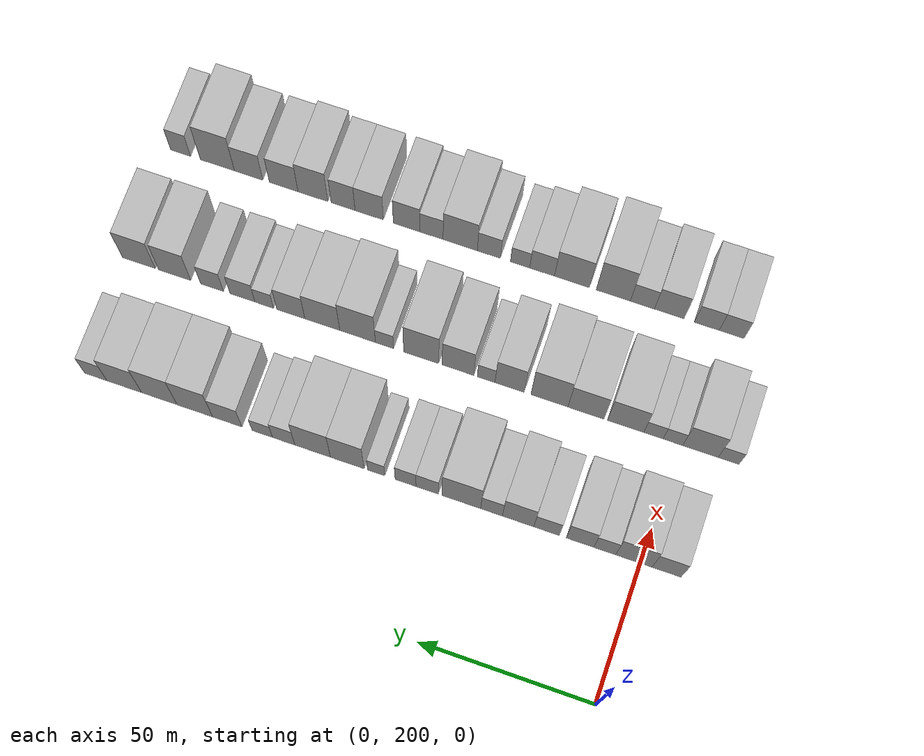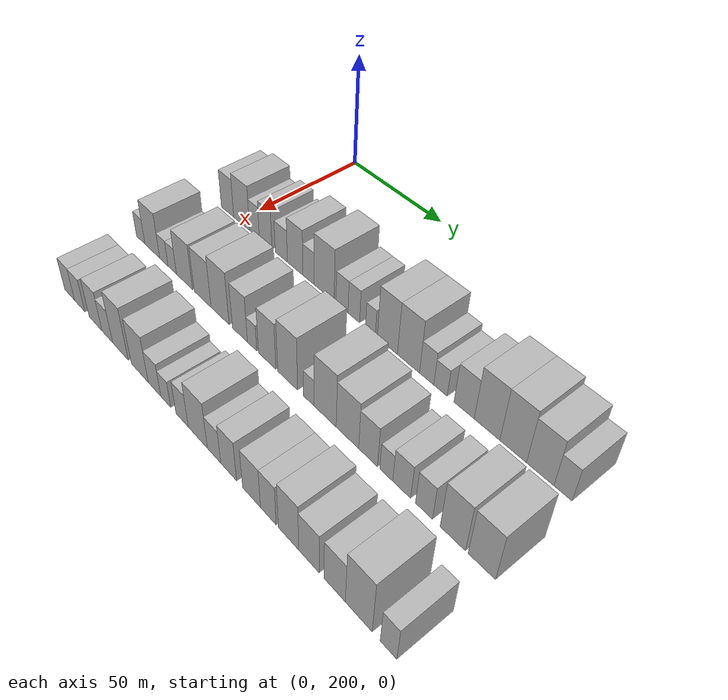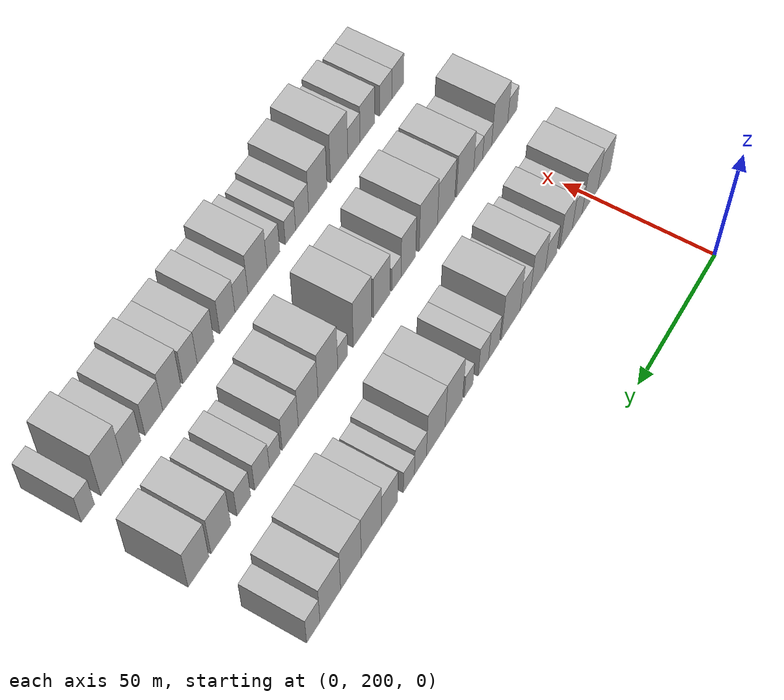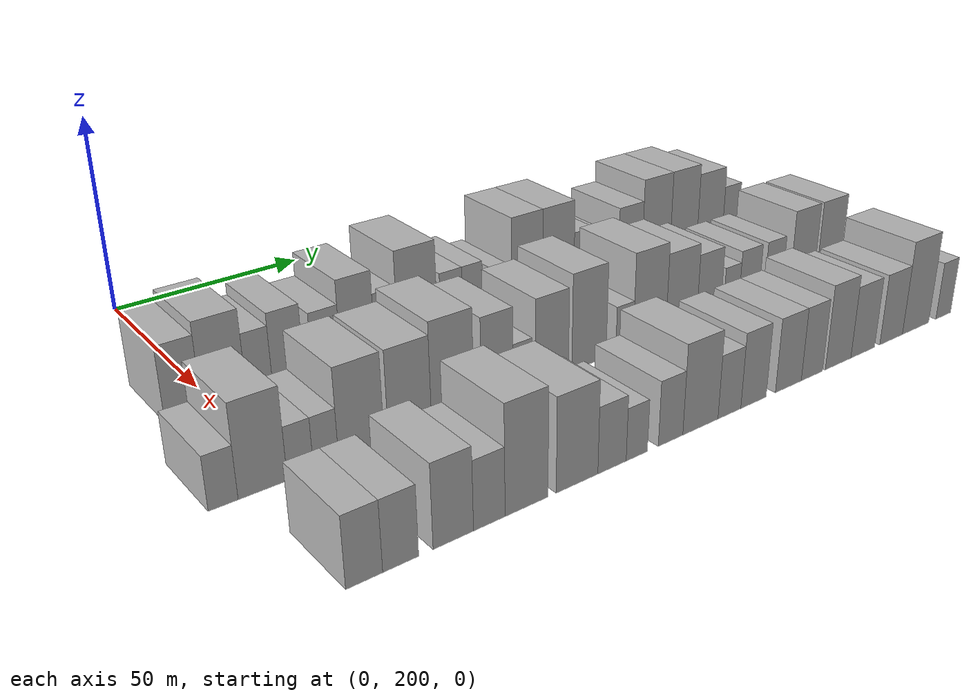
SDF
<sdf version="1.6">
 <world name="default">
  <model name="building_57">
   <static>1</static>
   <pose>50.0000 192.7352 0 0.000000 0.000000 0.000000</pose>
   <link name="link">
    <pose>0 0 9.00 0 0 0</pose>
    <collision name="collision"><geometry><box><size>20.0000 8.2420 18.0000</size></box></geometry></collision>
    <visual name="visual">
     <cast_shadows>0</cast_shadows>
     <geometry><box><size>20.0000 8.2420 18.0000</size></box></geometry>
     <material>
      <script>
       <uri>model://HANNAS_wall/materials/scripts</uri>
       <uri>model://HANNAS_wall/materials/textures</uri>
       <name>vrc/HANNAS_wall</name>
      </script>
     </material>
    </visual>
   </link>
  </model>
  <model name="building_58">
   <static>1</static>
   <pose>50.0000 202.0015 0 0.000000 0.000000 0.000000</pose>
   <link name="link">
    <pose>0 0 10.50 0 0 0</pose>
    <collision name="collision"><geometry><box><size>20.0000 10.2906 21.0000</size></box></geometry></collision>
    <visual name="visual">
     <cast_shadows>0</cast_shadows>
     <geometry><box><size>20.0000 10.2906 21.0000</size></box></geometry>
     <material>
      <script>
       <uri>model://HANNAS_wall/materials/scripts</uri>
       <uri>model://HANNAS_wall/materials/textures</uri>
       <name>vrc/HANNAS_wall</name>
      </script>
     </material>
    </visual>
   </link>
  </model>
  <model name="building_59">
   <static>1</static>
   <pose>50.0000 210.2636 0 0.000000 0.000000 0.000000</pose>
   <link name="link">
    <pose>0 0 7.50 0 0 0</pose>
    <collision name="collision"><geometry><box><size>20.0000 6.2336 15.0000</size></box></geometry></collision>
    <visual name="visual">
     <cast_shadows>0</cast_shadows>
     <geometry><box><size>20.0000 6.2336 15.0000</size></box></geometry>
     <material>
      <script>
       <uri>model://HANNAS_wall/materials/scripts</uri>
       <uri>model://HANNAS_wall/materials/textures</uri>
       <name>vrc/HANNAS_wall</name>
      </script>
     </material>
    </visual>
   </link>
  </model>
  <model name="building_60">
   <static>1</static>
   <pose>50.0000 217.2864 0 0.000000 0.000000 0.000000</pose>
   <link name="link">
    <pose>0 0 9.00 0 0 0</pose>
    <collision name="collision"><geometry><box><size>20.0000 7.8121 18.0000</size></box></geometry></collision>
    <visual name="visual">
     <cast_shadows>0</cast_shadows>
     <geometry><box><size>20.0000 7.8121 18.0000</size></box></geometry>
     <material>
      <script>
       <uri>model://HANNAS_wall/materials/scripts</uri>
       <uri>model://HANNAS_wall/materials/textures</uri>
       <name>vrc/HANNAS_wall</name>
      </script>
     </material>
    </visual>
   </link>
  </model>
  <model name="building_61">
   <static>1</static>
   <pose>50.0000 226.8428 0 0.000000 0.000000 0.000000</pose>
   <link name="link">
    <pose>0 0 7.50 0 0 0</pose>
    <collision name="collision"><geometry><box><size>20.0000 7.3006 15.0000</size></box></geometry></collision>
    <visual name="visual">
     <cast_shadows>0</cast_shadows>
     <geometry><box><size>20.0000 7.3006 15.0000</size></box></geometry>
     <material>
      <script>
       <uri>model://HANNAS_wall/materials/scripts</uri>
       <uri>model://HANNAS_wall/materials/textures</uri>
       <name>vrc/HANNAS_wall</name>
      </script>
     </material>
    </visual>
   </link>
  </model>
  <model name="building_62">
   <static>1</static>
   <pose>50.0000 235.0057 0 0.000000 0.000000 0.000000</pose>
   <link name="link">
    <pose>0 0 10.50 0 0 0</pose>
    <collision name="collision"><geometry><box><size>20.0000 9.0253 21.0000</size></box></geometry></collision>
    <visual name="visual">
     <cast_shadows>0</cast_shadows>
     <geometry><box><size>20.0000 9.0253 21.0000</size></box></geometry>
     <material>
      <script>
       <uri>model://HANNAS_wall/materials/scripts</uri>
       <uri>model://HANNAS_wall/materials/textures</uri>
       <name>vrc/HANNAS_wall</name>
      </script>
     </material>
    </visual>
   </link>
  </model>
  <model name="building_63">
   <static>1</static>
   <pose>50.0000 242.6533 0 0.000000 0.000000 0.000000</pose>
   <link name="link">
    <pose>0 0 7.50 0 0 0</pose>
    <collision name="collision"><geometry><box><size>20.0000 6.2699 15.0000</size></box></geometry></collision>
    <visual name="visual">
     <cast_shadows>0</cast_shadows>
     <geometry><box><size>20.0000 6.2699 15.0000</size></box></geometry>
     <material>
      <script>
       <uri>model://HANNAS_wall/materials/scripts</uri>
       <uri>model://HANNAS_wall/materials/textures</uri>
       <name>vrc/HANNAS_wall</name>
      </script>
     </material>
    </visual>
   </link>
  </model>
  <model name="building_64">
   <static>1</static>
   <pose>50.0000 251.3895 0 0.000000 0.000000 0.000000</pose>
   <link name="link">
    <pose>0 0 12.00 0 0 0</pose>
    <collision name="collision"><geometry><box><size>20.0000 11.2024 24.0000</size></box></geometry></collision>
    <visual name="visual">
     <cast_shadows>0</cast_shadows>
     <geometry><box><size>20.0000 11.2024 24.0000</size></box></geometry>
     <material>
      <script>
       <uri>model://HANNAS_wall/materials/scripts</uri>
       <uri>model://HANNAS_wall/materials/textures</uri>
       <name>vrc/HANNAS_wall</name>
      </script>
     </material>
    </visual>
   </link>
  </model>
  <model name="building_65">
   <static>1</static>
   <pose>50.0000 261.2134 0 0.000000 0.000000 0.000000</pose>
   <link name="link">
    <pose>0 0 7.50 0 0 0</pose>
    <collision name="collision"><geometry><box><size>20.0000 6.4454 15.0000</size></box></geometry></collision>
    <visual name="visual">
     <cast_shadows>0</cast_shadows>
     <geometry><box><size>20.0000 6.4454 15.0000</size></box></geometry>
     <material>
      <script>
       <uri>model://HANNAS_wall/materials/scripts</uri>
       <uri>model://HANNAS_wall/materials/textures</uri>
       <name>vrc/HANNAS_wall</name>
      </script>
     </material>
    </visual>
   </link>
  </model>
  <model name="building_66">
   <static>1</static>
   <pose>50.0000 267.4584 0 0.000000 0.000000 0.000000</pose>
   <link name="link">
    <pose>0 0 7.50 0 0 0</pose>
    <collision name="collision"><geometry><box><size>20.0000 6.0447 15.0000</size></box></geometry></collision>
    <visual name="visual">
     <cast_shadows>0</cast_shadows>
     <geometry><box><size>20.0000 6.0447 15.0000</size></box></geometry>
     <material>
      <script>
       <uri>model://HANNAS_wall/materials/scripts</uri>
       <uri>model://HANNAS_wall/materials/textures</uri>
       <name>vrc/HANNAS_wall</name>
      </script>
     </material>
    </visual>
   </link>
  </model>
  <model name="building_67">
   <static>1</static>
   <pose>50.0000 275.9786 0 0.000000 0.000000 0.000000</pose>
   <link name="link">
    <pose>0 0 6.00 0 0 0</pose>
    <collision name="collision"><geometry><box><size>20.0000 4.9956 12.0000</size></box></geometry></collision>
    <visual name="visual">
     <cast_shadows>0</cast_shadows>
     <geometry><box><size>20.0000 4.9956 12.0000</size></box></geometry>
     <material>
      <script>
       <uri>model://HANNAS_wall/materials/scripts</uri>
       <uri>model://HANNAS_wall/materials/textures</uri>
       <name>vrc/HANNAS_wall</name>
      </script>
     </material>
    </visual>
   </link>
  </model>
  <model name="building_68">
   <static>1</static>
   <pose>50.0000 284.3986 0 0.000000 0.000000 0.000000</pose>
   <link name="link">
    <pose>0 0 12.00 0 0 0</pose>
    <collision name="collision"><geometry><box><size>20.0000 9.8446 24.0000</size></box></geometry></collision>
    <visual name="visual">
     <cast_shadows>0</cast_shadows>
     <geometry><box><size>20.0000 9.8446 24.0000</size></box></geometry>
     <material>
      <script>
       <uri>model://HANNAS_wall/materials/scripts</uri>
       <uri>model://HANNAS_wall/materials/textures</uri>
       <name>vrc/HANNAS_wall</name>
      </script>
     </material>
    </visual>
   </link>
  </model>
  <model name="building_69">
   <static>1</static>
   <pose>50.0000 294.5354 0 0.000000 0.000000 0.000000</pose>
   <link name="link">
    <pose>0 0 12.00 0 0 0</pose>
    <collision name="collision"><geometry><box><size>20.0000 10.4290 24.0000</size></box></geometry></collision>
    <visual name="visual">
     <cast_shadows>0</cast_shadows>
     <geometry><box><size>20.0000 10.4290 24.0000</size></box></geometry>
     <material>
      <script>
       <uri>model://HANNAS_wall/materials/scripts</uri>
       <uri>model://HANNAS_wall/materials/textures</uri>
       <name>vrc/HANNAS_wall</name>
      </script>
     </material>
    </visual>
   </link>
  </model>
  <model name="building_70">
   <static>1</static>
   <pose>50.0000 303.0234 0 0.000000 0.000000 0.000000</pose>
   <link name="link">
    <pose>0 0 7.50 0 0 0</pose>
    <collision name="collision"><geometry><box><size>20.0000 6.5468 15.0000</size></box></geometry></collision>
    <visual name="visual">
     <cast_shadows>0</cast_shadows>
     <geometry><box><size>20.0000 6.5468 15.0000</size></box></geometry>
     <material>
      <script>
       <uri>model://HANNAS_wall/materials/scripts</uri>
       <uri>model://HANNAS_wall/materials/textures</uri>
       <name>vrc/HANNAS_wall</name>
      </script>
     </material>
    </visual>
   </link>
  </model>
  <model name="building_71">
   <static>1</static>
   <pose>50.0000 309.2907 0 0.000000 0.000000 0.000000</pose>
   <link name="link">
    <pose>0 0 6.00 0 0 0</pose>
    <collision name="collision"><geometry><box><size>20.0000 5.9878 12.0000</size></box></geometry></collision>
    <visual name="visual">
     <cast_shadows>0</cast_shadows>
     <geometry><box><size>20.0000 5.9878 12.0000</size></box></geometry>
     <material>
      <script>
       <uri>model://HANNAS_wall/materials/scripts</uri>
       <uri>model://HANNAS_wall/materials/textures</uri>
       <name>vrc/HANNAS_wall</name>
      </script>
     </material>
    </visual>
   </link>
  </model>
  <model name="building_72">
   <static>1</static>
   <pose>50.0000 319.6072 0 0.000000 0.000000 0.000000</pose>
   <link name="link">
    <pose>0 0 9.00 0 0 0</pose>
    <collision name="collision"><geometry><box><size>20.0000 8.6452 18.0000</size></box></geometry></collision>
    <visual name="visual">
     <cast_shadows>0</cast_shadows>
     <geometry><box><size>20.0000 8.6452 18.0000</size></box></geometry>
     <material>
      <script>
       <uri>model://HANNAS_wall/materials/scripts</uri>
       <uri>model://HANNAS_wall/materials/textures</uri>
       <name>vrc/HANNAS_wall</name>
      </script>
     </material>
    </visual>
   </link>
  </model>
  <model name="building_73">
   <static>1</static>
   <pose>50.0000 329.2154 0 0.000000 0.000000 0.000000</pose>
   <link name="link">
    <pose>0 0 12.00 0 0 0</pose>
    <collision name="collision"><geometry><box><size>20.0000 10.5711 24.0000</size></box></geometry></collision>
    <visual name="visual">
     <cast_shadows>0</cast_shadows>
     <geometry><box><size>20.0000 10.5711 24.0000</size></box></geometry>
     <material>
      <script>
       <uri>model://HANNAS_wall/materials/scripts</uri>
       <uri>model://HANNAS_wall/materials/textures</uri>
       <name>vrc/HANNAS_wall</name>
      </script>
     </material>
    </visual>
   </link>
  </model>
  <model name="building_74">
   <static>1</static>
   <pose>50.0000 339.7780 0 0.000000 0.000000 0.000000</pose>
   <link name="link">
    <pose>0 0 12.00 0 0 0</pose>
    <collision name="collision"><geometry><box><size>20.0000 10.5543 24.0000</size></box></geometry></collision>
    <visual name="visual">
     <cast_shadows>0</cast_shadows>
     <geometry><box><size>20.0000 10.5543 24.0000</size></box></geometry>
     <material>
      <script>
       <uri>model://HANNAS_wall/materials/scripts</uri>
       <uri>model://HANNAS_wall/materials/textures</uri>
       <name>vrc/HANNAS_wall</name>
      </script>
     </material>
    </visual>
   </link>
  </model>
  <model name="building_75">
   <static>1</static>
   <pose>50.0000 350.2322 0 0.000000 0.000000 0.000000</pose>
   <link name="link">
    <pose>0 0 10.50 0 0 0</pose>
    <collision name="collision"><geometry><box><size>20.0000 10.3541 21.0000</size></box></geometry></collision>
    <visual name="visual">
     <cast_shadows>0</cast_shadows>
     <geometry><box><size>20.0000 10.3541 21.0000</size></box></geometry>
     <material>
      <script>
       <uri>model://HANNAS_wall/materials/scripts</uri>
       <uri>model://HANNAS_wall/materials/textures</uri>
       <name>vrc/HANNAS_wall</name>
      </script>
     </material>
    </visual>
   </link>
  </model>
  <model name="building_76">
   <static>1</static>
   <pose>50.0000 358.7346 0 0.000000 0.000000 0.000000</pose>
   <link name="link">
    <pose>0 0 7.50 0 0 0</pose>
    <collision name="collision"><geometry><box><size>20.0000 6.6507 15.0000</size></box></geometry></collision>
    <visual name="visual">
     <cast_shadows>0</cast_shadows>
     <geometry><box><size>20.0000 6.6507 15.0000</size></box></geometry>
     <material>
      <script>
       <uri>model://HANNAS_wall/materials/scripts</uri>
       <uri>model://HANNAS_wall/materials/textures</uri>
       <name>vrc/HANNAS_wall</name>
      </script>
     </material>
    </visual>
   </link>
  </model>
  <model name="building_135">
   <static>1</static>
   <pose>85.0000 185.7520 0 0.000000 0.000000 0.000000</pose>
   <link name="link">
    <pose>0 0 6.00 0 0 0</pose>
    <collision name="collision"><geometry><box><size>20.0000 5.9815 12.0000</size></box></geometry></collision>
    <visual name="visual">
     <cast_shadows>0</cast_shadows>
     <geometry><box><size>20.0000 5.9815 12.0000</size></box></geometry>
     <material>
      <script>
       <uri>model://HANNAS_wall/materials/scripts</uri>
       <uri>model://HANNAS_wall/materials/textures</uri>
       <name>vrc/HANNAS_wall</name>
      </script>
     </material>
    </visual>
   </link>
  </model>
  <model name="building_136">
   <static>1</static>
   <pose>85.0000 193.8483 0 0.000000 0.000000 0.000000</pose>
   <link name="link">
    <pose>0 0 10.50 0 0 0</pose>
    <collision name="collision"><geometry><box><size>20.0000 10.2111 21.0000</size></box></geometry></collision>
    <visual name="visual">
     <cast_shadows>0</cast_shadows>
     <geometry><box><size>20.0000 10.2111 21.0000</size></box></geometry>
     <material>
      <script>
       <uri>model://HANNAS_wall/materials/scripts</uri>
       <uri>model://HANNAS_wall/materials/textures</uri>
       <name>vrc/HANNAS_wall</name>
      </script>
     </material>
    </visual>
   </link>
  </model>
  <model name="building_137">
   <static>1</static>
   <pose>85.0000 201.7842 0 0.000000 0.000000 0.000000</pose>
   <link name="link">
    <pose>0 0 6.00 0 0 0</pose>
    <collision name="collision"><geometry><box><size>20.0000 5.6608 12.0000</size></box></geometry></collision>
    <visual name="visual">
     <cast_shadows>0</cast_shadows>
     <geometry><box><size>20.0000 5.6608 12.0000</size></box></geometry>
     <material>
      <script>
       <uri>model://HANNAS_wall/materials/scripts</uri>
       <uri>model://HANNAS_wall/materials/textures</uri>
       <name>vrc/HANNAS_wall</name>
      </script>
     </material>
    </visual>
   </link>
  </model>
  <model name="building_138">
   <static>1</static>
   <pose>85.0000 207.3984 0 0.000000 0.000000 0.000000</pose>
   <link name="link">
    <pose>0 0 6.00 0 0 0</pose>
    <collision name="collision"><geometry><box><size>20.0000 5.5677 12.0000</size></box></geometry></collision>
    <visual name="visual">
     <cast_shadows>0</cast_shadows>
     <geometry><box><size>20.0000 5.5677 12.0000</size></box></geometry>
     <material>
      <script>
       <uri>model://HANNAS_wall/materials/scripts</uri>
       <uri>model://HANNAS_wall/materials/textures</uri>
       <name>vrc/HANNAS_wall</name>
      </script>
     </material>
    </visual>
   </link>
  </model>
  <model name="building_139">
   <static>1</static>
   <pose>85.0000 215.4247 0 0.000000 0.000000 0.000000</pose>
   <link name="link">
    <pose>0 0 10.50 0 0 0</pose>
    <collision name="collision"><geometry><box><size>20.0000 10.4849 21.0000</size></box></geometry></collision>
    <visual name="visual">
     <cast_shadows>0</cast_shadows>
     <geometry><box><size>20.0000 10.4849 21.0000</size></box></geometry>
     <material>
      <script>
       <uri>model://HANNAS_wall/materials/scripts</uri>
       <uri>model://HANNAS_wall/materials/textures</uri>
       <name>vrc/HANNAS_wall</name>
      </script>
     </material>
    </visual>
   </link>
  </model>
  <model name="building_140">
   <static>1</static>
   <pose>85.0000 226.9028 0 0.000000 0.000000 0.000000</pose>
   <link name="link">
    <pose>0 0 10.50 0 0 0</pose>
    <collision name="collision"><geometry><box><size>20.0000 10.4713 21.0000</size></box></geometry></collision>
    <visual name="visual">
     <cast_shadows>0</cast_shadows>
     <geometry><box><size>20.0000 10.4713 21.0000</size></box></geometry>
     <material>
      <script>
       <uri>model://HANNAS_wall/materials/scripts</uri>
       <uri>model://HANNAS_wall/materials/textures</uri>
       <name>vrc/HANNAS_wall</name>
      </script>
     </material>
    </visual>
   </link>
  </model>
  <model name="building_141">
   <static>1</static>
   <pose>85.0000 237.5397 0 0.000000 0.000000 0.000000</pose>
   <link name="link">
    <pose>0 0 12.00 0 0 0</pose>
    <collision name="collision"><geometry><box><size>20.0000 10.8025 24.0000</size></box></geometry></collision>
    <visual name="visual">
     <cast_shadows>0</cast_shadows>
     <geometry><box><size>20.0000 10.8025 24.0000</size></box></geometry>
     <material>
      <script>
       <uri>model://HANNAS_wall/materials/scripts</uri>
       <uri>model://HANNAS_wall/materials/textures</uri>
       <name>vrc/HANNAS_wall</name>
      </script>
     </material>
    </visual>
   </link>
  </model>
  <model name="building_142">
   <static>1</static>
   <pose>85.0000 249.1986 0 0.000000 0.000000 0.000000</pose>
   <link name="link">
    <pose>0 0 10.50 0 0 0</pose>
    <collision name="collision"><geometry><box><size>20.0000 8.5154 21.0000</size></box></geometry></collision>
    <visual name="visual">
     <cast_shadows>0</cast_shadows>
     <geometry><box><size>20.0000 8.5154 21.0000</size></box></geometry>
     <material>
      <script>
       <uri>model://HANNAS_wall/materials/scripts</uri>
       <uri>model://HANNAS_wall/materials/textures</uri>
       <name>vrc/HANNAS_wall</name>
      </script>
     </material>
    </visual>
   </link>
  </model>
  <model name="building_143">
   <static>1</static>
   <pose>85.0000 256.0603 0 0.000000 0.000000 0.000000</pose>
   <link name="link">
    <pose>0 0 6.00 0 0 0</pose>
    <collision name="collision"><geometry><box><size>20.0000 5.2080 12.0000</size></box></geometry></collision>
    <visual name="visual">
     <cast_shadows>0</cast_shadows>
     <geometry><box><size>20.0000 5.2080 12.0000</size></box></geometry>
     <material>
      <script>
       <uri>model://HANNAS_wall/materials/scripts</uri>
       <uri>model://HANNAS_wall/materials/textures</uri>
       <name>vrc/HANNAS_wall</name>
      </script>
     </material>
    </visual>
   </link>
  </model>
  <model name="building_144">
   <static>1</static>
   <pose>85.0000 264.3470 0 0.000000 0.000000 0.000000</pose>
   <link name="link">
    <pose>0 0 10.50 0 0 0</pose>
    <collision name="collision"><geometry><box><size>20.0000 9.3654 21.0000</size></box></geometry></collision>
    <visual name="visual">
     <cast_shadows>0</cast_shadows>
     <geometry><box><size>20.0000 9.3654 21.0000</size></box></geometry>
     <material>
      <script>
       <uri>model://HANNAS_wall/materials/scripts</uri>
       <uri>model://HANNAS_wall/materials/textures</uri>
       <name>vrc/HANNAS_wall</name>
      </script>
     </material>
    </visual>
   </link>
  </model>
  <model name="building_145">
   <static>1</static>
   <pose>85.0000 275.1715 0 0.000000 0.000000 0.000000</pose>
   <link name="link">
    <pose>0 0 12.00 0 0 0</pose>
    <collision name="collision"><geometry><box><size>20.0000 10.2836 24.0000</size></box></geometry></collision>
    <visual name="visual">
     <cast_shadows>0</cast_shadows>
     <geometry><box><size>20.0000 10.2836 24.0000</size></box></geometry>
     <material>
      <script>
       <uri>model://HANNAS_wall/materials/scripts</uri>
       <uri>model://HANNAS_wall/materials/textures</uri>
       <name>vrc/HANNAS_wall</name>
      </script>
     </material>
    </visual>
   </link>
  </model>
  <model name="building_146">
   <static>1</static>
   <pose>85.0000 286.0085 0 0.000000 0.000000 0.000000</pose>
   <link name="link">
    <pose>0 0 6.00 0 0 0</pose>
    <collision name="collision"><geometry><box><size>20.0000 5.3905 12.0000</size></box></geometry></collision>
    <visual name="visual">
     <cast_shadows>0</cast_shadows>
     <geometry><box><size>20.0000 5.3905 12.0000</size></box></geometry>
     <material>
      <script>
       <uri>model://HANNAS_wall/materials/scripts</uri>
       <uri>model://HANNAS_wall/materials/textures</uri>
       <name>vrc/HANNAS_wall</name>
      </script>
     </material>
    </visual>
   </link>
  </model>
  <model name="building_147">
   <static>1</static>
   <pose>85.0000 294.0016 0 0.000000 0.000000 0.000000</pose>
   <link name="link">
    <pose>0 0 12.00 0 0 0</pose>
    <collision name="collision"><geometry><box><size>20.0000 10.5956 24.0000</size></box></geometry></collision>
    <visual name="visual">
     <cast_shadows>0</cast_shadows>
     <geometry><box><size>20.0000 10.5956 24.0000</size></box></geometry>
     <material>
      <script>
       <uri>model://HANNAS_wall/materials/scripts</uri>
       <uri>model://HANNAS_wall/materials/textures</uri>
       <name>vrc/HANNAS_wall</name>
      </script>
     </material>
    </visual>
   </link>
  </model>
  <model name="building_148">
   <static>1</static>
   <pose>85.0000 304.5121 0 0.000000 0.000000 0.000000</pose>
   <link name="link">
    <pose>0 0 10.50 0 0 0</pose>
    <collision name="collision"><geometry><box><size>20.0000 10.4254 21.0000</size></box></geometry></collision>
    <visual name="visual">
     <cast_shadows>0</cast_shadows>
     <geometry><box><size>20.0000 10.4254 21.0000</size></box></geometry>
     <material>
      <script>
       <uri>model://HANNAS_wall/materials/scripts</uri>
       <uri>model://HANNAS_wall/materials/textures</uri>
       <name>vrc/HANNAS_wall</name>
      </script>
     </material>
    </visual>
   </link>
  </model>
  <model name="building_149">
   <static>1</static>
   <pose>85.0000 313.9116 0 0.000000 0.000000 0.000000</pose>
   <link name="link">
    <pose>0 0 9.00 0 0 0</pose>
    <collision name="collision"><geometry><box><size>20.0000 8.3736 18.0000</size></box></geometry></collision>
    <visual name="visual">
     <cast_shadows>0</cast_shadows>
     <geometry><box><size>20.0000 8.3736 18.0000</size></box></geometry>
     <material>
      <script>
       <uri>model://HANNAS_wall/materials/scripts</uri>
       <uri>model://HANNAS_wall/materials/textures</uri>
       <name>vrc/HANNAS_wall</name>
      </script>
     </material>
    </visual>
   </link>
  </model>
  <model name="building_150">
   <static>1</static>
   <pose>85.0000 321.8836 0 0.000000 0.000000 0.000000</pose>
   <link name="link">
    <pose>0 0 6.00 0 0 0</pose>
    <collision name="collision"><geometry><box><size>20.0000 5.5704 12.0000</size></box></geometry></collision>
    <visual name="visual">
     <cast_shadows>0</cast_shadows>
     <geometry><box><size>20.0000 5.5704 12.0000</size></box></geometry>
     <material>
      <script>
       <uri>model://HANNAS_wall/materials/scripts</uri>
       <uri>model://HANNAS_wall/materials/textures</uri>
       <name>vrc/HANNAS_wall</name>
      </script>
     </material>
    </visual>
   </link>
  </model>
  <model name="building_151">
   <static>1</static>
   <pose>85.0000 328.4122 0 0.000000 0.000000 0.000000</pose>
   <link name="link">
    <pose>0 0 7.50 0 0 0</pose>
    <collision name="collision"><geometry><box><size>20.0000 7.4868 15.0000</size></box></geometry></collision>
    <visual name="visual">
     <cast_shadows>0</cast_shadows>
     <geometry><box><size>20.0000 7.4868 15.0000</size></box></geometry>
     <material>
      <script>
       <uri>model://HANNAS_wall/materials/scripts</uri>
       <uri>model://HANNAS_wall/materials/textures</uri>
       <name>vrc/HANNAS_wall</name>
      </script>
     </material>
    </visual>
   </link>
  </model>
  <model name="building_152">
   <static>1</static>
   <pose>85.0000 337.5911 0 0.000000 0.000000 0.000000</pose>
   <link name="link">
    <pose>0 0 7.50 0 0 0</pose>
    <collision name="collision"><geometry><box><size>20.0000 6.8711 15.0000</size></box></geometry></collision>
    <visual name="visual">
     <cast_shadows>0</cast_shadows>
     <geometry><box><size>20.0000 6.8711 15.0000</size></box></geometry>
     <material>
      <script>
       <uri>model://HANNAS_wall/materials/scripts</uri>
       <uri>model://HANNAS_wall/materials/textures</uri>
       <name>vrc/HANNAS_wall</name>
      </script>
     </material>
    </visual>
   </link>
  </model>
  <model name="building_153">
   <static>1</static>
   <pose>85.0000 348.8835 0 0.000000 0.000000 0.000000</pose>
   <link name="link">
    <pose>0 0 10.50 0 0 0</pose>
    <collision name="collision"><geometry><box><size>20.0000 9.7137 21.0000</size></box></geometry></collision>
    <visual name="visual">
     <cast_shadows>0</cast_shadows>
     <geometry><box><size>20.0000 9.7137 21.0000</size></box></geometry>
     <material>
      <script>
       <uri>model://HANNAS_wall/materials/scripts</uri>
       <uri>model://HANNAS_wall/materials/textures</uri>
       <name>vrc/HANNAS_wall</name>
      </script>
     </material>
    </visual>
   </link>
  </model>
  <model name="building_154">
   <static>1</static>
   <pose>85.0000 359.7481 0 0.000000 0.000000 0.000000</pose>
   <link name="link">
    <pose>0 0 10.50 0 0 0</pose>
    <collision name="collision"><geometry><box><size>20.0000 10.0156 21.0000</size></box></geometry></collision>
    <visual name="visual">
     <cast_shadows>0</cast_shadows>
     <geometry><box><size>20.0000 10.0156 21.0000</size></box></geometry>
     <material>
      <script>
       <uri>model://HANNAS_wall/materials/scripts</uri>
       <uri>model://HANNAS_wall/materials/textures</uri>
       <name>vrc/HANNAS_wall</name>
      </script>
     </material>
    </visual>
   </link>
  </model>
  <model name="building_218">
   <static>1</static>
   <pose>120.0000 195.3630 0 0.000000 0.000000 0.000000</pose>
   <link name="link">
    <pose>0 0 7.50 0 0 0</pose>
    <collision name="collision"><geometry><box><size>20.0000 7.2365 15.0000</size></box></geometry></collision>
    <visual name="visual">
     <cast_shadows>0</cast_shadows>
     <geometry><box><size>20.0000 7.2365 15.0000</size></box></geometry>
     <material>
      <script>
       <uri>model://HANNAS_wall/materials/scripts</uri>
       <uri>model://HANNAS_wall/materials/textures</uri>
       <name>vrc/HANNAS_wall</name>
      </script>
     </material>
    </visual>
   </link>
  </model>
  <model name="building_219">
   <static>1</static>
   <pose>120.0000 202.6335 0 0.000000 0.000000 0.000000</pose>
   <link name="link">
    <pose>0 0 7.50 0 0 0</pose>
    <collision name="collision"><geometry><box><size>20.0000 7.3044 15.0000</size></box></geometry></collision>
    <visual name="visual">
     <cast_shadows>0</cast_shadows>
     <geometry><box><size>20.0000 7.3044 15.0000</size></box></geometry>
     <material>
      <script>
       <uri>model://HANNAS_wall/materials/scripts</uri>
       <uri>model://HANNAS_wall/materials/textures</uri>
       <name>vrc/HANNAS_wall</name>
      </script>
     </material>
    </visual>
   </link>
  </model>
  <model name="building_220">
   <static>1</static>
   <pose>120.0000 213.6447 0 0.000000 0.000000 0.000000</pose>
   <link name="link">
    <pose>0 0 9.00 0 0 0</pose>
    <collision name="collision"><geometry><box><size>20.0000 8.7180 18.0000</size></box></geometry></collision>
    <visual name="visual">
     <cast_shadows>0</cast_shadows>
     <geometry><box><size>20.0000 8.7180 18.0000</size></box></geometry>
     <material>
      <script>
       <uri>model://HANNAS_wall/materials/scripts</uri>
       <uri>model://HANNAS_wall/materials/textures</uri>
       <name>vrc/HANNAS_wall</name>
      </script>
     </material>
    </visual>
   </link>
  </model>
  <model name="building_221">
   <static>1</static>
   <pose>120.0000 221.5574 0 0.000000 0.000000 0.000000</pose>
   <link name="link">
    <pose>0 0 7.50 0 0 0</pose>
    <collision name="collision"><geometry><box><size>20.0000 7.1074 15.0000</size></box></geometry></collision>
    <visual name="visual">
     <cast_shadows>0</cast_shadows>
     <geometry><box><size>20.0000 7.1074 15.0000</size></box></geometry>
     <material>
      <script>
       <uri>model://HANNAS_wall/materials/scripts</uri>
       <uri>model://HANNAS_wall/materials/textures</uri>
       <name>vrc/HANNAS_wall</name>
      </script>
     </material>
    </visual>
   </link>
  </model>
  <model name="building_222">
   <static>1</static>
   <pose>120.0000 230.1351 0 0.000000 0.000000 0.000000</pose>
   <link name="link">
    <pose>0 0 12.00 0 0 0</pose>
    <collision name="collision"><geometry><box><size>20.0000 10.0481 24.0000</size></box></geometry></collision>
    <visual name="visual">
     <cast_shadows>0</cast_shadows>
     <geometry><box><size>20.0000 10.0481 24.0000</size></box></geometry>
     <material>
      <script>
       <uri>model://HANNAS_wall/materials/scripts</uri>
       <uri>model://HANNAS_wall/materials/textures</uri>
       <name>vrc/HANNAS_wall</name>
      </script>
     </material>
    </visual>
   </link>
  </model>
  <model name="building_223">
   <static>1</static>
   <pose>120.0000 242.3585 0 0.000000 0.000000 0.000000</pose>
   <link name="link">
    <pose>0 0 10.50 0 0 0</pose>
    <collision name="collision"><geometry><box><size>20.0000 10.3988 21.0000</size></box></geometry></collision>
    <visual name="visual">
     <cast_shadows>0</cast_shadows>
     <geometry><box><size>20.0000 10.3988 21.0000</size></box></geometry>
     <material>
      <script>
       <uri>model://HANNAS_wall/materials/scripts</uri>
       <uri>model://HANNAS_wall/materials/textures</uri>
       <name>vrc/HANNAS_wall</name>
      </script>
     </material>
    </visual>
   </link>
  </model>
  <model name="building_224">
   <static>1</static>
   <pose>120.0000 251.2489 0 0.000000 0.000000 0.000000</pose>
   <link name="link">
    <pose>0 0 7.50 0 0 0</pose>
    <collision name="collision"><geometry><box><size>20.0000 7.3820 15.0000</size></box></geometry></collision>
    <visual name="visual">
     <cast_shadows>0</cast_shadows>
     <geometry><box><size>20.0000 7.3820 15.0000</size></box></geometry>
     <material>
      <script>
       <uri>model://HANNAS_wall/materials/scripts</uri>
       <uri>model://HANNAS_wall/materials/textures</uri>
       <name>vrc/HANNAS_wall</name>
      </script>
     </material>
    </visual>
   </link>
  </model>
  <model name="building_225">
   <static>1</static>
   <pose>120.0000 257.8014 0 0.000000 0.000000 0.000000</pose>
   <link name="link">
    <pose>0 0 6.00 0 0 0</pose>
    <collision name="collision"><geometry><box><size>20.0000 5.7229 12.0000</size></box></geometry></collision>
    <visual name="visual">
     <cast_shadows>0</cast_shadows>
     <geometry><box><size>20.0000 5.7229 12.0000</size></box></geometry>
     <material>
      <script>
       <uri>model://HANNAS_wall/materials/scripts</uri>
       <uri>model://HANNAS_wall/materials/textures</uri>
       <name>vrc/HANNAS_wall</name>
      </script>
     </material>
    </visual>
   </link>
  </model>
  <model name="building_226">
   <static>1</static>
   <pose>120.0000 267.1123 0 0.000000 0.000000 0.000000</pose>
   <link name="link">
    <pose>0 0 7.50 0 0 0</pose>
    <collision name="collision"><geometry><box><size>20.0000 6.8988 15.0000</size></box></geometry></collision>
    <visual name="visual">
     <cast_shadows>0</cast_shadows>
     <geometry><box><size>20.0000 6.8988 15.0000</size></box></geometry>
     <material>
      <script>
       <uri>model://HANNAS_wall/materials/scripts</uri>
       <uri>model://HANNAS_wall/materials/textures</uri>
       <name>vrc/HANNAS_wall</name>
      </script>
     </material>
    </visual>
   </link>
  </model>
  <model name="building_227">
   <static>1</static>
   <pose>120.0000 275.7135 0 0.000000 0.000000 0.000000</pose>
   <link name="link">
    <pose>0 0 10.50 0 0 0</pose>
    <collision name="collision"><geometry><box><size>20.0000 10.3036 21.0000</size></box></geometry></collision>
    <visual name="visual">
     <cast_shadows>0</cast_shadows>
     <geometry><box><size>20.0000 10.3036 21.0000</size></box></geometry>
     <material>
      <script>
       <uri>model://HANNAS_wall/materials/scripts</uri>
       <uri>model://HANNAS_wall/materials/textures</uri>
       <name>vrc/HANNAS_wall</name>
      </script>
     </material>
    </visual>
   </link>
  </model>
  <model name="building_228">
   <static>1</static>
   <pose>120.0000 284.3438 0 0.000000 0.000000 0.000000</pose>
   <link name="link">
    <pose>0 0 7.50 0 0 0</pose>
    <collision name="collision"><geometry><box><size>20.0000 6.9571 15.0000</size></box></geometry></collision>
    <visual name="visual">
     <cast_shadows>0</cast_shadows>
     <geometry><box><size>20.0000 6.9571 15.0000</size></box></geometry>
     <material>
      <script>
       <uri>model://HANNAS_wall/materials/scripts</uri>
       <uri>model://HANNAS_wall/materials/textures</uri>
       <name>vrc/HANNAS_wall</name>
      </script>
     </material>
    </visual>
   </link>
  </model>
  <model name="building_229">
   <static>1</static>
   <pose>120.0000 291.8132 0 0.000000 0.000000 0.000000</pose>
   <link name="link">
    <pose>0 0 9.00 0 0 0</pose>
    <collision name="collision"><geometry><box><size>20.0000 7.9817 18.0000</size></box></geometry></collision>
    <visual name="visual">
     <cast_shadows>0</cast_shadows>
     <geometry><box><size>20.0000 7.9817 18.0000</size></box></geometry>
     <material>
      <script>
       <uri>model://HANNAS_wall/materials/scripts</uri>
       <uri>model://HANNAS_wall/materials/textures</uri>
       <name>vrc/HANNAS_wall</name>
      </script>
     </material>
    </visual>
   </link>
  </model>
  <model name="building_230">
   <static>1</static>
   <pose>120.0000 303.0815 0 0.000000 0.000000 0.000000</pose>
   <link name="link">
    <pose>0 0 9.00 0 0 0</pose>
    <collision name="collision"><geometry><box><size>20.0000 8.5550 18.0000</size></box></geometry></collision>
    <visual name="visual">
     <cast_shadows>0</cast_shadows>
     <geometry><box><size>20.0000 8.5550 18.0000</size></box></geometry>
     <material>
      <script>
       <uri>model://HANNAS_wall/materials/scripts</uri>
       <uri>model://HANNAS_wall/materials/textures</uri>
       <name>vrc/HANNAS_wall</name>
      </script>
     </material>
    </visual>
   </link>
  </model>
  <model name="building_231">
   <static>1</static>
   <pose>120.0000 310.9964 0 0.000000 0.000000 0.000000</pose>
   <link name="link">
    <pose>0 0 9.00 0 0 0</pose>
    <collision name="collision"><geometry><box><size>20.0000 7.2748 18.0000</size></box></geometry></collision>
    <visual name="visual">
     <cast_shadows>0</cast_shadows>
     <geometry><box><size>20.0000 7.2748 18.0000</size></box></geometry>
     <material>
      <script>
       <uri>model://HANNAS_wall/materials/scripts</uri>
       <uri>model://HANNAS_wall/materials/textures</uri>
       <name>vrc/HANNAS_wall</name>
      </script>
     </material>
    </visual>
   </link>
  </model>
  <model name="building_232">
   <static>1</static>
   <pose>120.0000 320.1691 0 0.000000 0.000000 0.000000</pose>
   <link name="link">
    <pose>0 0 10.50 0 0 0</pose>
    <collision name="collision"><geometry><box><size>20.0000 9.0705 21.0000</size></box></geometry></collision>
    <visual name="visual">
     <cast_shadows>0</cast_shadows>
     <geometry><box><size>20.0000 9.0705 21.0000</size></box></geometry>
     <material>
      <script>
       <uri>model://HANNAS_wall/materials/scripts</uri>
       <uri>model://HANNAS_wall/materials/textures</uri>
       <name>vrc/HANNAS_wall</name>
      </script>
     </material>
    </visual>
   </link>
  </model>
  <model name="building_233">
   <static>1</static>
   <pose>120.0000 329.0777 0 0.000000 0.000000 0.000000</pose>
   <link name="link">
    <pose>0 0 9.00 0 0 0</pose>
    <collision name="collision"><geometry><box><size>20.0000 8.7469 18.0000</size></box></geometry></collision>
    <visual name="visual">
     <cast_shadows>0</cast_shadows>
     <geometry><box><size>20.0000 8.7469 18.0000</size></box></geometry>
     <material>
      <script>
       <uri>model://HANNAS_wall/materials/scripts</uri>
       <uri>model://HANNAS_wall/materials/textures</uri>
       <name>vrc/HANNAS_wall</name>
      </script>
     </material>
    </visual>
   </link>
  </model>
  <model name="building_234">
   <static>1</static>
   <pose>120.0000 339.7995 0 0.000000 0.000000 0.000000</pose>
   <link name="link">
    <pose>0 0 9.00 0 0 0</pose>
    <collision name="collision"><geometry><box><size>20.0000 8.6967 18.0000</size></box></geometry></collision>
    <visual name="visual">
     <cast_shadows>0</cast_shadows>
     <geometry><box><size>20.0000 8.6967 18.0000</size></box></geometry>
     <material>
      <script>
       <uri>model://HANNAS_wall/materials/scripts</uri>
       <uri>model://HANNAS_wall/materials/textures</uri>
       <name>vrc/HANNAS_wall</name>
      </script>
     </material>
    </visual>
   </link>
  </model>
  <model name="building_235">
   <static>1</static>
   <pose>120.0000 349.3949 0 0.000000 0.000000 0.000000</pose>
   <link name="link">
    <pose>0 0 12.00 0 0 0</pose>
    <collision name="collision"><geometry><box><size>20.0000 10.4940 24.0000</size></box></geometry></collision>
    <visual name="visual">
     <cast_shadows>0</cast_shadows>
     <geometry><box><size>20.0000 10.4940 24.0000</size></box></geometry>
     <material>
      <script>
       <uri>model://HANNAS_wall/materials/scripts</uri>
       <uri>model://HANNAS_wall/materials/textures</uri>
       <name>vrc/HANNAS_wall</name>
      </script>
     </material>
    </visual>
   </link>
  </model>
  <model name="building_236">
   <static>1</static>
   <pose>120.0000 360.7107 0 0.000000 0.000000 0.000000</pose>
   <link name="link">
    <pose>0 0 7.50 0 0 0</pose>
    <collision name="collision"><geometry><box><size>20.0000 6.1376 15.0000</size></box></geometry></collision>
    <visual name="visual">
     <cast_shadows>0</cast_shadows>
     <geometry><box><size>20.0000 6.1376 15.0000</size></box></geometry>
     <material>
      <script>
       <uri>model://HANNAS_wall/materials/scripts</uri>
       <uri>model://HANNAS_wall/materials/textures</uri>
       <name>vrc/HANNAS_wall</name>
      </script>
     </material>
    </visual>
   </link>
  </model>
 </world>
</sdf>
